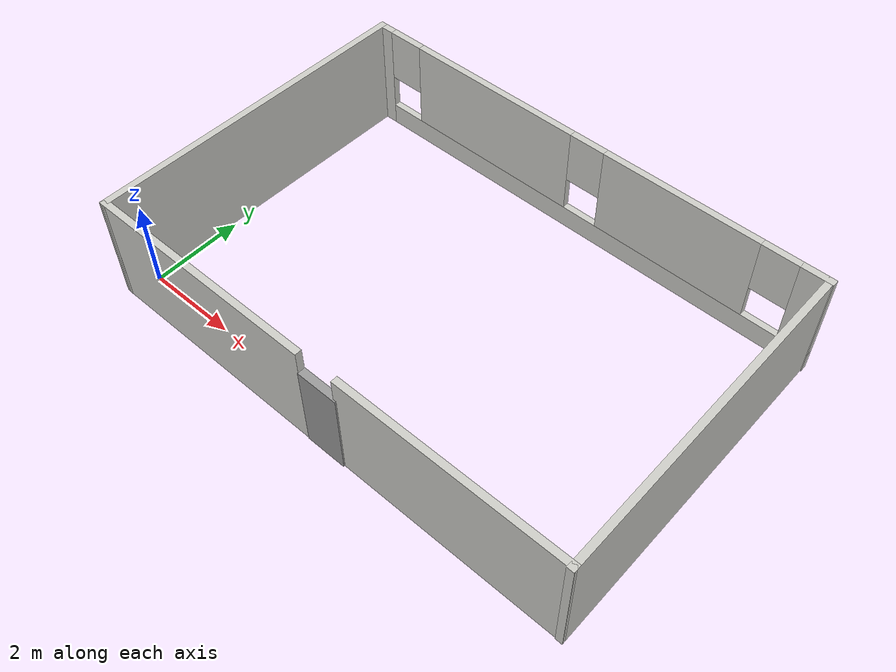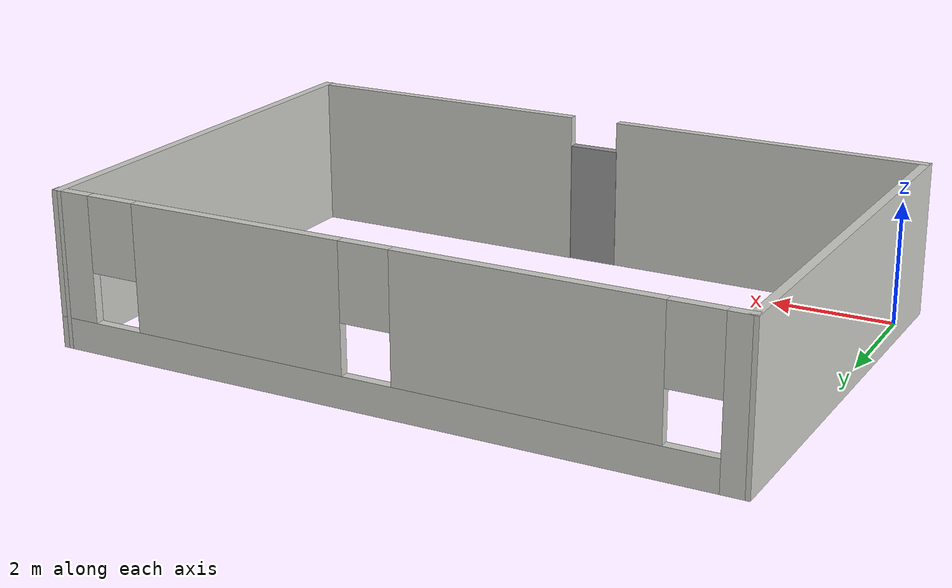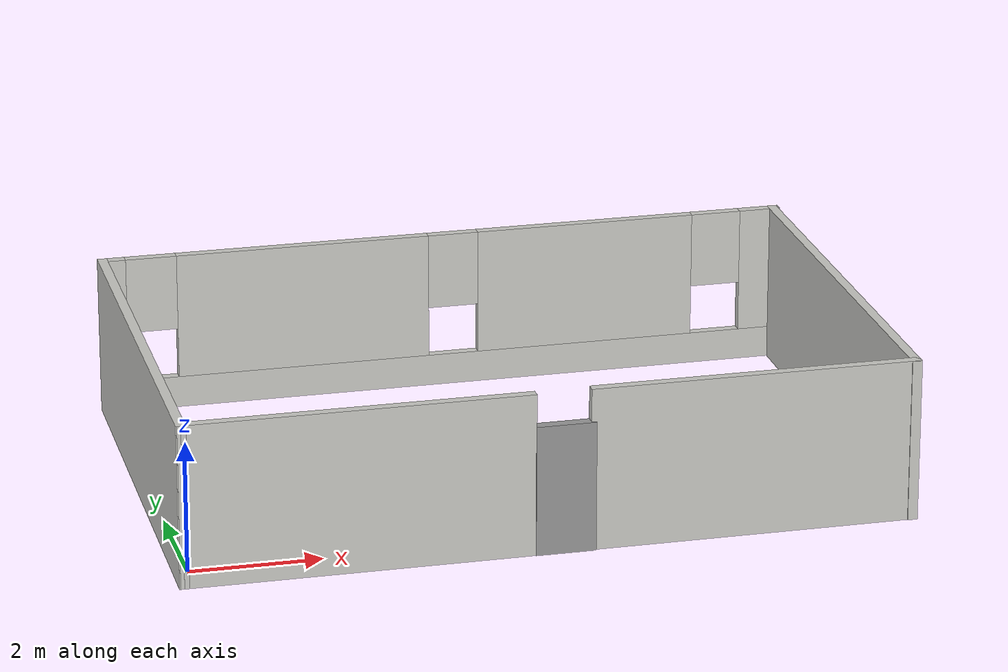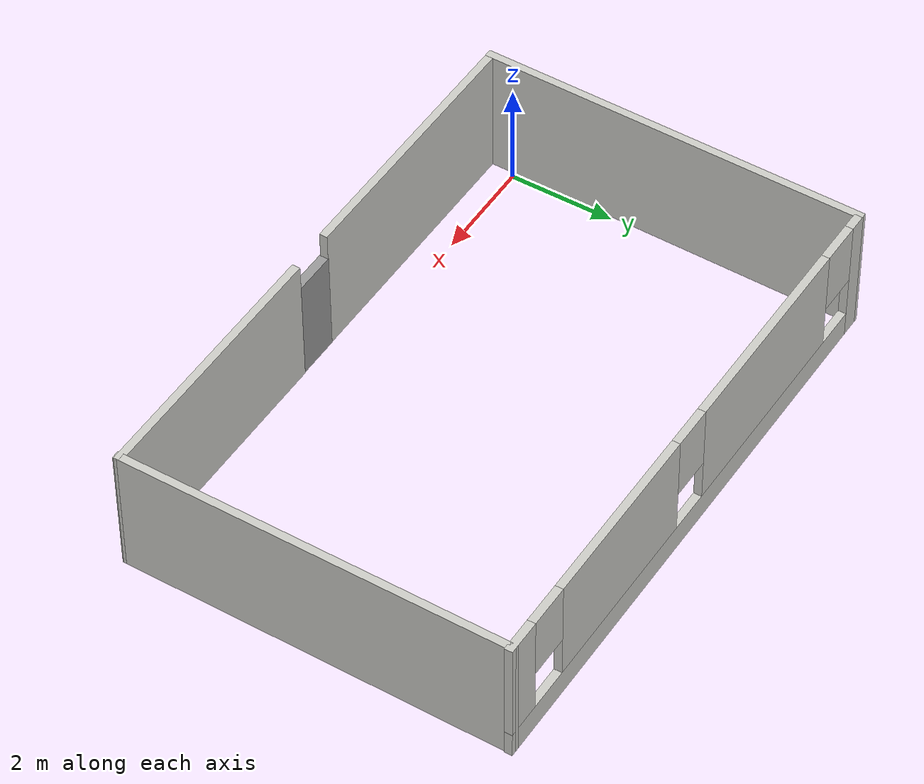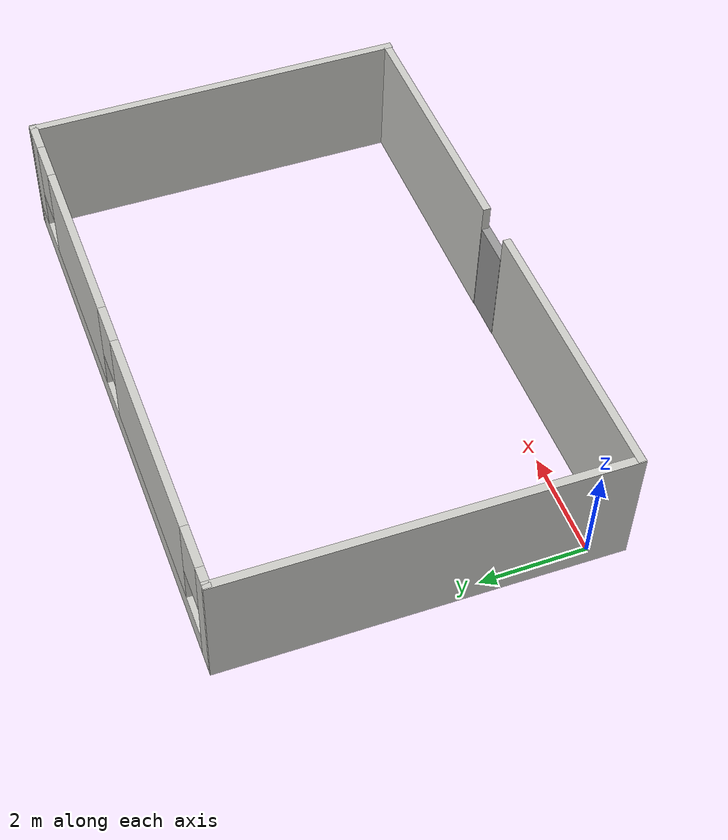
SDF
<?xml version='1.0'?>
<sdf version='1.7'>
  <model name='Actual_super_market'>
    <pose>5.32194 3.06888 0 0 -0 0</pose>
    <link name='Door_1'>
      <collision name='Door_1_Collision'>
        <geometry>
          <box>
            <size>0.9 0.17 2</size>
          </box>
        </geometry>
        <pose>0 0 1 0 -0 0</pose>
      </collision>
      <visual name='Door_1_Visual'>
        <pose>0 0 1 0 -0 0</pose>
        <geometry>
          <box>
            <size>0.9 0.17 2</size>
          </box>
        </geometry>
        <material>
          <script>
            <uri>file://media/materials/scripts/gazebo.material</uri>
            <name>Gazebo/Grey</name>
          </script>
        </material>
      </visual>
      <pose>0.148403 -3.61522 0 0 -0 0</pose>
    </link>
    <link name='Wall_1'>
      <collision name='Wall_1_Collision'>
        <geometry>
          <box>
            <size>5.25 0.15 2.5</size>
          </box>
        </geometry>
        <pose>0 0 1.25 0 -0 0</pose>
      </collision>
      <visual name='Wall_1_Visual'>
        <pose>0 0 1.25 0 -0 0</pose>
        <geometry>
          <box>
            <size>5.25 0.15 2.5</size>
          </box>
        </geometry>
        <material>
          <script>
            <uri>file://media/materials/scripts/gazebo.material</uri>
            <name>Gazebo/CeilingTiled</name>
          </script>
          <ambient>1 1 1 1</ambient>
        </material>
        <meta>
          <layer>0</layer>
        </meta>
      </visual>
      <pose>-2.91794 -3.61196 0 0 -0 3.14159</pose>
    </link>
    <link name='Wall_3'>
      <collision name='Wall_3_Collision'>
        <geometry>
          <box>
            <size>7.37467 0.15 2.5</size>
          </box>
        </geometry>
        <pose>0 0 1.25 0 -0 0</pose>
      </collision>
      <visual name='Wall_3_Visual'>
        <pose>0 0 1.25 0 -0 0</pose>
        <geometry>
          <box>
            <size>7.37467 0.15 2.5</size>
          </box>
        </geometry>
        <material>
          <script>
            <uri>file://media/materials/scripts/gazebo.material</uri>
            <name>Gazebo/CeilingTiled</name>
          </script>
          <ambient>1 1 1 1</ambient>
        </material>
        <meta>
          <layer>0</layer>
        </meta>
      </visual>
      <pose>-5.43316 -0 0 0 -0 1.55635</pose>
    </link>
    <link name='Wall_5'>
      <pose>0.061407 3.61196 0 0 -0 0</pose>
      <visual name='Wall_5_Visual_0'>
        <pose>-5.29818 0 1.25 0 -0 0</pose>
        <geometry>
          <box>
            <size>0.403646 0.15 2.5</size>
          </box>
        </geometry>
        <material>
          <script>
            <uri>file://media/materials/scripts/gazebo.material</uri>
            <name>Gazebo/CeilingTiled</name>
          </script>
          <ambient>1 1 1 1</ambient>
        </material>
        <meta>
          <layer>0</layer>
        </meta>
      </visual>
      <collision name='Wall_5_Collision_0'>
        <geometry>
          <box>
            <size>0.403646 0.15 2.5</size>
          </box>
        </geometry>
        <pose>-5.29818 0 1.25 0 -0 0</pose>
      </collision>
      <visual name='Wall_5_Visual_1'>
        <pose>0.201823 0 0.25 0 -0 0</pose>
        <geometry>
          <box>
            <size>10.5964 0.15 0.5</size>
          </box>
        </geometry>
        <material>
          <script>
            <uri>file://media/materials/scripts/gazebo.material</uri>
            <name>Gazebo/CeilingTiled</name>
          </script>
          <ambient>1 1 1 1</ambient>
        </material>
        <meta>
          <layer>0</layer>
        </meta>
      </visual>
      <collision name='Wall_5_Collision_1'>
        <geometry>
          <box>
            <size>10.5964 0.15 0.5</size>
          </box>
        </geometry>
        <pose>0.201823 0 0.25 0 -0 0</pose>
      </collision>
      <visual name='Wall_5_Visual_2'>
        <pose>-2.28426 0 1.5 0 -0 0</pose>
        <geometry>
          <box>
            <size>4.0242 0.15 2</size>
          </box>
        </geometry>
        <material>
          <script>
            <uri>file://media/materials/scripts/gazebo.material</uri>
            <name>Gazebo/CeilingTiled</name>
          </script>
          <ambient>1 1 1 1</ambient>
        </material>
        <meta>
          <layer>0</layer>
        </meta>
      </visual>
      <collision name='Wall_5_Collision_2'>
        <geometry>
          <box>
            <size>4.0242 0.15 2</size>
          </box>
        </geometry>
        <pose>-2.28426 0 1.5 0 -0 0</pose>
      </collision>
      <visual name='Wall_5_Visual_3'>
        <pose>2.28285 0 1.5 0 -0 0</pose>
        <geometry>
          <box>
            <size>3.51002 0.15 2</size>
          </box>
        </geometry>
        <material>
          <script>
            <uri>file://media/materials/scripts/gazebo.material</uri>
            <name>Gazebo/CeilingTiled</name>
          </script>
          <ambient>1 1 1 1</ambient>
        </material>
        <meta>
          <layer>0</layer>
        </meta>
      </visual>
      <collision name='Wall_5_Collision_3'>
        <geometry>
          <box>
            <size>3.51002 0.15 2</size>
          </box>
        </geometry>
        <pose>2.28285 0 1.5 0 -0 0</pose>
      </collision>
      <visual name='Wall_5_Visual_4'>
        <pose>5.16893 0 1.5 0 -0 0</pose>
        <geometry>
          <box>
            <size>0.662139 0.15 2</size>
          </box>
        </geometry>
        <material>
          <script>
            <uri>file://media/materials/scripts/gazebo.material</uri>
            <name>Gazebo/CeilingTiled</name>
          </script>
          <ambient>1 1 1 1</ambient>
        </material>
        <meta>
          <layer>0</layer>
        </meta>
      </visual>
      <collision name='Wall_5_Collision_4'>
        <geometry>
          <box>
            <size>0.662139 0.15 2</size>
          </box>
        </geometry>
        <pose>5.16893 0 1.5 0 -0 0</pose>
      </collision>
      <visual name='Wall_5_Visual_5'>
        <pose>-4.69635 0 1.9 0 -0 0</pose>
        <geometry>
          <box>
            <size>0.8 0.15 1.2</size>
          </box>
        </geometry>
        <material>
          <script>
            <uri>file://media/materials/scripts/gazebo.material</uri>
            <name>Gazebo/CeilingTiled</name>
          </script>
          <ambient>1 1 1 1</ambient>
        </material>
        <meta>
          <layer>0</layer>
        </meta>
      </visual>
      <collision name='Wall_5_Collision_5'>
        <geometry>
          <box>
            <size>0.8 0.15 1.2</size>
          </box>
        </geometry>
        <pose>-4.69635 0 1.9 0 -0 0</pose>
      </collision>
      <visual name='Wall_5_Visual_6'>
        <pose>0.127842 0 1.9 0 -0 0</pose>
        <geometry>
          <box>
            <size>0.8 0.15 1.2</size>
          </box>
        </geometry>
        <material>
          <script>
            <uri>file://media/materials/scripts/gazebo.material</uri>
            <name>Gazebo/CeilingTiled</name>
          </script>
          <ambient>1 1 1 1</ambient>
        </material>
        <meta>
          <layer>0</layer>
        </meta>
      </visual>
      <collision name='Wall_5_Collision_6'>
        <geometry>
          <box>
            <size>0.8 0.15 1.2</size>
          </box>
        </geometry>
        <pose>0.127842 0 1.9 0 -0 0</pose>
      </collision>
      <visual name='Wall_5_Visual_7'>
        <pose>4.43786 0 1.9 0 -0 0</pose>
        <geometry>
          <box>
            <size>0.8 0.15 1.2</size>
          </box>
        </geometry>
        <material>
          <script>
            <uri>file://media/materials/scripts/gazebo.material</uri>
            <name>Gazebo/CeilingTiled</name>
          </script>
          <ambient>1 1 1 1</ambient>
        </material>
        <meta>
          <layer>0</layer>
        </meta>
      </visual>
      <collision name='Wall_5_Collision_7'>
        <geometry>
          <box>
            <size>0.8 0.15 1.2</size>
          </box>
        </geometry>
        <pose>4.43786 0 1.9 0 -0 0</pose>
      </collision>
    </link>
    <link name='Wall_6'>
      <collision name='Wall_6_Collision'>
        <geometry>
          <box>
            <size>7.37393 0.15 2.5</size>
          </box>
        </geometry>
        <pose>0 0 1.25 0 -0 0</pose>
      </collision>
      <visual name='Wall_6_Visual'>
        <pose>0 0 1.25 0 -0 0</pose>
        <geometry>
          <box>
            <size>7.37393 0.15 2.5</size>
          </box>
        </geometry>
        <material>
          <script>
            <uri>file://media/materials/scripts/gazebo.material</uri>
            <name>Gazebo/CeilingTiled</name>
          </script>
          <ambient>1 1 1 1</ambient>
        </material>
        <meta>
          <layer>0</layer>
        </meta>
      </visual>
      <pose>5.46032 -0 0 0 -0 -1.5732</pose>
    </link>
    <link name='Wall_7'>
      <collision name='Wall_7_Collision'>
        <geometry>
          <box>
            <size>5 0.15 2.5</size>
          </box>
        </geometry>
        <pose>0 0 1.25 0 -0 0</pose>
      </collision>
      <visual name='Wall_7_Visual'>
        <pose>0 0 1.25 0 -0 0</pose>
        <geometry>
          <box>
            <size>5 0.15 2.5</size>
          </box>
        </geometry>
        <material>
          <script>
            <uri>file://media/materials/scripts/gazebo.material</uri>
            <name>Gazebo/CeilingTiled</name>
          </script>
          <ambient>1 1 1 1</ambient>
        </material>
        <meta>
          <layer>0</layer>
        </meta>
      </visual>
      <pose>3.02663 -3.59456 0 0 -0 3.14159</pose>
    </link>
    <static>1</static>
  </model>
</sdf>
